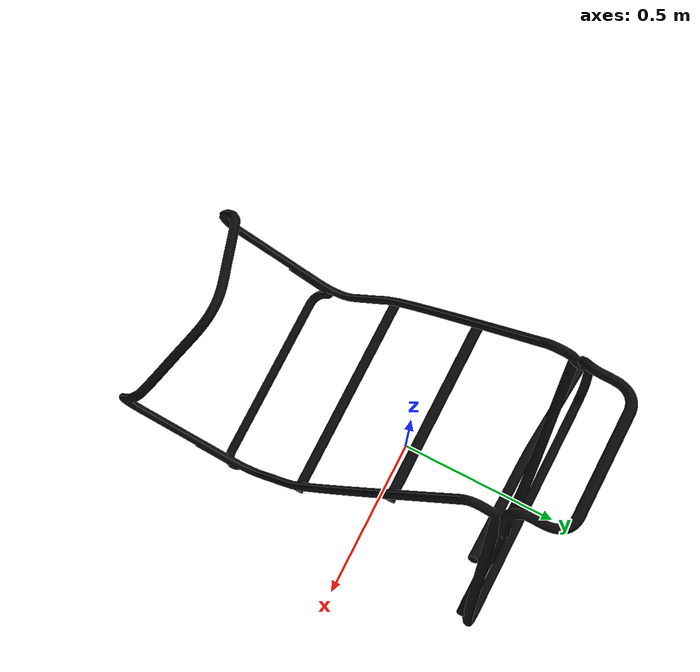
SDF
<?xml version='1.0'?>
<sdf version="1.3">

  <model name="Stand">
    <pose>0 0 0  0.0 0.0 0.0 </pose>
    <static>true</static>

    <link name="body">

      <visual name="visual">
        <geometry>
          <mesh><uri>model://Stand/meshes/stand.dae</uri></mesh>
        </geometry>
        <material>
          <emissive> 1 1 1 1 </emissive>
        </material>
      </visual>

      <collision name="collision">
        <geometry>
          <mesh><uri>model://Stand/meshes/stand.dae</uri></mesh>
        </geometry>
      </collision>

    </link>
  </model>
</sdf>
